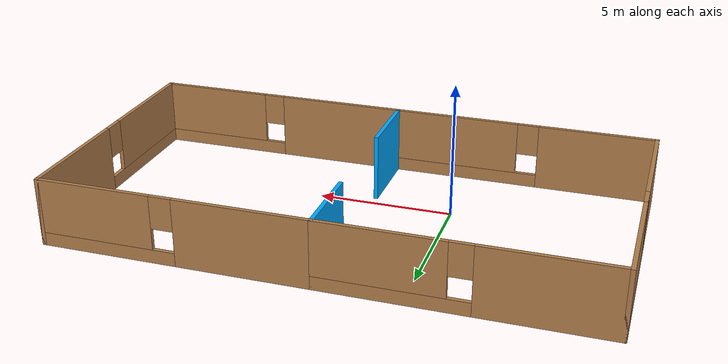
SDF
<?xml version='1.0'?>
<sdf version='1.6'>
  <model name='building'>
    <pose frame=''>2.99 1.585 0 0 -0 0</pose>
    <link name='Wall_1'>
      <pose frame=''>-4.925 -4.925 0 0 -0 0</pose>
      <visual name='Wall_1_Visual_0'>
        <pose frame=''>-2.80081 0 1.25 0 -0 0</pose>
        <geometry>
          <box>
            <size>4.39839 0.15 2.5</size>
          </box>
        </geometry>
        <material>
          <script>
            <uri>file://media/materials/scripts/gazebo.material</uri>
            <name>Gazebo/Wood</name>
          </script>
          <ambient>1 1 1 1</ambient>
        </material>
        <meta>
          <layer>0</layer>
        </meta>
      </visual>
      <collision name='Wall_1_Collision_0'>
        <geometry>
          <box>
            <size>4.39839 0.15 2.5</size>
          </box>
        </geometry>
        <pose frame=''>-2.80081 0 1.25 0 -0 0</pose>
      </collision>
      <visual name='Wall_1_Visual_1'>
        <pose frame=''>2.19919 0 0.25 0 -0 0</pose>
        <geometry>
          <box>
            <size>5.60161 0.15 0.5</size>
          </box>
        </geometry>
        <material>
          <script>
            <uri>file://media/materials/scripts/gazebo.material</uri>
            <name>Gazebo/Wood</name>
          </script>
          <ambient>1 1 1 1</ambient>
        </material>
        <meta>
          <layer>0</layer>
        </meta>
      </visual>
      <collision name='Wall_1_Collision_1'>
        <geometry>
          <box>
            <size>5.60161 0.15 0.5</size>
          </box>
        </geometry>
        <pose frame=''>2.19919 0 0.25 0 -0 0</pose>
      </collision>
      <visual name='Wall_1_Visual_2'>
        <pose frame=''>2.59919 0 1.5 0 -0 0</pose>
        <geometry>
          <box>
            <size>4.80161 0.15 2</size>
          </box>
        </geometry>
        <material>
          <script>
            <uri>file://media/materials/scripts/gazebo.material</uri>
            <name>Gazebo/Wood</name>
          </script>
          <ambient>1 1 1 1</ambient>
        </material>
        <meta>
          <layer>0</layer>
        </meta>
      </visual>
      <collision name='Wall_1_Collision_2'>
        <geometry>
          <box>
            <size>4.80161 0.15 2</size>
          </box>
        </geometry>
        <pose frame=''>2.59919 0 1.5 0 -0 0</pose>
      </collision>
      <visual name='Wall_1_Visual_3'>
        <pose frame=''>-0.201613 0 1.9 0 -0 0</pose>
        <geometry>
          <box>
            <size>0.8 0.15 1.2</size>
          </box>
        </geometry>
        <material>
          <script>
            <uri>file://media/materials/scripts/gazebo.material</uri>
            <name>Gazebo/Wood</name>
          </script>
          <ambient>1 1 1 1</ambient>
        </material>
        <meta>
          <layer>0</layer>
        </meta>
      </visual>
      <collision name='Wall_1_Collision_3'>
        <geometry>
          <box>
            <size>0.8 0.15 1.2</size>
          </box>
        </geometry>
        <pose frame=''>-0.201613 0 1.9 0 -0 0</pose>
      </collision>
    </link>
    <link name='Wall_11'>
      <pose frame=''>4.925 4.925 0 0 -0 0</pose>
      <visual name='Wall_11_Visual_0'>
        <pose frame=''>-2.54076 0 1.25 0 -0 0</pose>
        <geometry>
          <box>
            <size>4.91847 0.15 2.5</size>
          </box>
        </geometry>
        <material>
          <script>
            <uri>file://media/materials/scripts/gazebo.material</uri>
            <name>Gazebo/Wood</name>
          </script>
          <ambient>1 1 1 1</ambient>
        </material>
        <meta>
          <layer>0</layer>
        </meta>
      </visual>
      <collision name='Wall_11_Collision_0'>
        <geometry>
          <box>
            <size>4.91847 0.15 2.5</size>
          </box>
        </geometry>
        <pose frame=''>-2.54076 0 1.25 0 -0 0</pose>
      </collision>
      <visual name='Wall_11_Visual_1'>
        <pose frame=''>2.45924 0 0.25 0 -0 0</pose>
        <geometry>
          <box>
            <size>5.08153 0.15 0.5</size>
          </box>
        </geometry>
        <material>
          <script>
            <uri>file://media/materials/scripts/gazebo.material</uri>
            <name>Gazebo/Wood</name>
          </script>
          <ambient>1 1 1 1</ambient>
        </material>
        <meta>
          <layer>0</layer>
        </meta>
      </visual>
      <collision name='Wall_11_Collision_1'>
        <geometry>
          <box>
            <size>5.08153 0.15 0.5</size>
          </box>
        </geometry>
        <pose frame=''>2.45924 0 0.25 0 -0 0</pose>
      </collision>
      <visual name='Wall_11_Visual_2'>
        <pose frame=''>2.85924 0 1.5 0 -0 0</pose>
        <geometry>
          <box>
            <size>4.28153 0.15 2</size>
          </box>
        </geometry>
        <material>
          <script>
            <uri>file://media/materials/scripts/gazebo.material</uri>
            <name>Gazebo/Wood</name>
          </script>
          <ambient>1 1 1 1</ambient>
        </material>
        <meta>
          <layer>0</layer>
        </meta>
      </visual>
      <collision name='Wall_11_Collision_2'>
        <geometry>
          <box>
            <size>4.28153 0.15 2</size>
          </box>
        </geometry>
        <pose frame=''>2.85924 0 1.5 0 -0 0</pose>
      </collision>
      <visual name='Wall_11_Visual_3'>
        <pose frame=''>0.318475 0 1.9 0 -0 0</pose>
        <geometry>
          <box>
            <size>0.8 0.15 1.2</size>
          </box>
        </geometry>
        <material>
          <script>
            <uri>file://media/materials/scripts/gazebo.material</uri>
            <name>Gazebo/Wood</name>
          </script>
          <ambient>1 1 1 1</ambient>
        </material>
        <meta>
          <layer>0</layer>
        </meta>
      </visual>
      <collision name='Wall_11_Collision_3'>
        <geometry>
          <box>
            <size>0.8 0.15 1.2</size>
          </box>
        </geometry>
        <pose frame=''>0.318475 0 1.9 0 -0 0</pose>
      </collision>
    </link>
    <link name='Wall_12'>
      <pose frame=''>9.85 0 0 0 0 -1.5708</pose>
      <visual name='Wall_12_Visual_0'>
        <pose frame=''>-2.63217 0 1.25 0 -0 0</pose>
        <geometry>
          <box>
            <size>4.73566 0.15 2.5</size>
          </box>
        </geometry>
        <material>
          <script>
            <uri>file://media/materials/scripts/gazebo.material</uri>
            <name>Gazebo/Wood</name>
          </script>
          <ambient>1 1 1 1</ambient>
        </material>
        <meta>
          <layer>0</layer>
        </meta>
      </visual>
      <collision name='Wall_12_Collision_0'>
        <geometry>
          <box>
            <size>4.73566 0.15 2.5</size>
          </box>
        </geometry>
        <pose frame=''>-2.63217 0 1.25 0 -0 0</pose>
      </collision>
      <visual name='Wall_12_Visual_1'>
        <pose frame=''>2.36783 0 0.25 0 -0 0</pose>
        <geometry>
          <box>
            <size>5.26434 0.15 0.5</size>
          </box>
        </geometry>
        <material>
          <script>
            <uri>file://media/materials/scripts/gazebo.material</uri>
            <name>Gazebo/Wood</name>
          </script>
          <ambient>1 1 1 1</ambient>
        </material>
        <meta>
          <layer>0</layer>
        </meta>
      </visual>
      <collision name='Wall_12_Collision_1'>
        <geometry>
          <box>
            <size>5.26434 0.15 0.5</size>
          </box>
        </geometry>
        <pose frame=''>2.36783 0 0.25 0 -0 0</pose>
      </collision>
      <visual name='Wall_12_Visual_2'>
        <pose frame=''>2.76783 0 1.5 0 -0 0</pose>
        <geometry>
          <box>
            <size>4.46434 0.15 2</size>
          </box>
        </geometry>
        <material>
          <script>
            <uri>file://media/materials/scripts/gazebo.material</uri>
            <name>Gazebo/Wood</name>
          </script>
          <ambient>1 1 1 1</ambient>
        </material>
        <meta>
          <layer>0</layer>
        </meta>
      </visual>
      <collision name='Wall_12_Collision_2'>
        <geometry>
          <box>
            <size>4.46434 0.15 2</size>
          </box>
        </geometry>
        <pose frame=''>2.76783 0 1.5 0 -0 0</pose>
      </collision>
      <visual name='Wall_12_Visual_3'>
        <pose frame=''>0.135659 0 1.9 0 -0 0</pose>
        <geometry>
          <box>
            <size>0.8 0.15 1.2</size>
          </box>
        </geometry>
        <material>
          <script>
            <uri>file://media/materials/scripts/gazebo.material</uri>
            <name>Gazebo/Wood</name>
          </script>
          <ambient>1 1 1 1</ambient>
        </material>
        <meta>
          <layer>0</layer>
        </meta>
      </visual>
      <collision name='Wall_12_Collision_3'>
        <geometry>
          <box>
            <size>0.8 0.15 1.2</size>
          </box>
        </geometry>
        <pose frame=''>0.135659 0 1.9 0 -0 0</pose>
      </collision>
    </link>
    <link name='Wall_2'>
      <collision name='Wall_2_Collision'>
        <geometry>
          <box>
            <size>3 0.15 2.5</size>
          </box>
        </geometry>
        <pose frame=''>0 0 1.25 0 -0 0</pose>
      </collision>
      <visual name='Wall_2_Visual'>
        <pose frame=''>0 0 1.25 0 -0 0</pose>
        <geometry>
          <box>
            <size>3 0.15 2.5</size>
          </box>
        </geometry>
        <material>
          <script>
            <uri>file://media/materials/scripts/gazebo.material</uri>
            <name>Gazebo/Grey</name>
          </script>
          <ambient>0 0.666667 1 1</ambient>
        </material>
        <meta>
          <layer>0</layer>
        </meta>
      </visual>
      <pose frame=''>0 -3.5 0 0 -0 1.5708</pose>
    </link>
    <link name='Wall_4'>
      <pose frame=''>4.925 -4.925 0 0 -0 0</pose>
      <visual name='Wall_4_Visual_0'>
        <pose frame=''>-2.57135 0 1.25 0 -0 0</pose>
        <geometry>
          <box>
            <size>4.85729 0.15 2.5</size>
          </box>
        </geometry>
        <material>
          <script>
            <uri>file://media/materials/scripts/gazebo.material</uri>
            <name>Gazebo/Wood</name>
          </script>
          <ambient>1 1 1 1</ambient>
        </material>
        <meta>
          <layer>0</layer>
        </meta>
      </visual>
      <collision name='Wall_4_Collision_0'>
        <geometry>
          <box>
            <size>4.85729 0.15 2.5</size>
          </box>
        </geometry>
        <pose frame=''>-2.57135 0 1.25 0 -0 0</pose>
      </collision>
      <visual name='Wall_4_Visual_1'>
        <pose frame=''>2.42865 0 0.25 0 -0 0</pose>
        <geometry>
          <box>
            <size>5.14271 0.15 0.5</size>
          </box>
        </geometry>
        <material>
          <script>
            <uri>file://media/materials/scripts/gazebo.material</uri>
            <name>Gazebo/Wood</name>
          </script>
          <ambient>1 1 1 1</ambient>
        </material>
        <meta>
          <layer>0</layer>
        </meta>
      </visual>
      <collision name='Wall_4_Collision_1'>
        <geometry>
          <box>
            <size>5.14271 0.15 0.5</size>
          </box>
        </geometry>
        <pose frame=''>2.42865 0 0.25 0 -0 0</pose>
      </collision>
      <visual name='Wall_4_Visual_2'>
        <pose frame=''>2.82865 0 1.5 0 -0 0</pose>
        <geometry>
          <box>
            <size>4.3427 0.15 2</size>
          </box>
        </geometry>
        <material>
          <script>
            <uri>file://media/materials/scripts/gazebo.material</uri>
            <name>Gazebo/Wood</name>
          </script>
          <ambient>1 1 1 1</ambient>
        </material>
        <meta>
          <layer>0</layer>
        </meta>
      </visual>
      <collision name='Wall_4_Collision_2'>
        <geometry>
          <box>
            <size>4.3427 0.15 2</size>
          </box>
        </geometry>
        <pose frame=''>2.82865 0 1.5 0 -0 0</pose>
      </collision>
      <visual name='Wall_4_Visual_3'>
        <pose frame=''>0.257295 0 1.9 0 -0 0</pose>
        <geometry>
          <box>
            <size>0.8 0.15 1.2</size>
          </box>
        </geometry>
        <material>
          <script>
            <uri>file://media/materials/scripts/gazebo.material</uri>
            <name>Gazebo/Wood</name>
          </script>
          <ambient>1 1 1 1</ambient>
        </material>
        <meta>
          <layer>0</layer>
        </meta>
      </visual>
      <collision name='Wall_4_Collision_3'>
        <geometry>
          <box>
            <size>0.8 0.15 1.2</size>
          </box>
        </geometry>
        <pose frame=''>0.257295 0 1.9 0 -0 0</pose>
      </collision>
    </link>
    <link name='Wall_7'>
      <pose frame=''>-9.85 0 0 0 -0 1.5708</pose>
      <visual name='Wall_7_Visual_0'>
        <pose frame=''>-2.70665 0 1.25 0 -0 0</pose>
        <geometry>
          <box>
            <size>4.5867 0.15 2.5</size>
          </box>
        </geometry>
        <material>
          <script>
            <uri>file://media/materials/scripts/gazebo.material</uri>
            <name>Gazebo/Wood</name>
          </script>
          <ambient>1 1 1 1</ambient>
        </material>
        <meta>
          <layer>0</layer>
        </meta>
      </visual>
      <collision name='Wall_7_Collision_0'>
        <geometry>
          <box>
            <size>4.5867 0.15 2.5</size>
          </box>
        </geometry>
        <pose frame=''>-2.70665 0 1.25 0 -0 0</pose>
      </collision>
      <visual name='Wall_7_Visual_1'>
        <pose frame=''>2.29335 0 0.25 0 -0 0</pose>
        <geometry>
          <box>
            <size>5.4133 0.15 0.5</size>
          </box>
        </geometry>
        <material>
          <script>
            <uri>file://media/materials/scripts/gazebo.material</uri>
            <name>Gazebo/Wood</name>
          </script>
          <ambient>1 1 1 1</ambient>
        </material>
        <meta>
          <layer>0</layer>
        </meta>
      </visual>
      <collision name='Wall_7_Collision_1'>
        <geometry>
          <box>
            <size>5.4133 0.15 0.5</size>
          </box>
        </geometry>
        <pose frame=''>2.29335 0 0.25 0 -0 0</pose>
      </collision>
      <visual name='Wall_7_Visual_2'>
        <pose frame=''>2.69335 0 1.5 0 -0 0</pose>
        <geometry>
          <box>
            <size>4.6133 0.15 2</size>
          </box>
        </geometry>
        <material>
          <script>
            <uri>file://media/materials/scripts/gazebo.material</uri>
            <name>Gazebo/Wood</name>
          </script>
          <ambient>1 1 1 1</ambient>
        </material>
        <meta>
          <layer>0</layer>
        </meta>
      </visual>
      <collision name='Wall_7_Collision_2'>
        <geometry>
          <box>
            <size>4.6133 0.15 2</size>
          </box>
        </geometry>
        <pose frame=''>2.69335 0 1.5 0 -0 0</pose>
      </collision>
      <visual name='Wall_7_Visual_3'>
        <pose frame=''>-0.013298 0 1.9 0 -0 0</pose>
        <geometry>
          <box>
            <size>0.8 0.15 1.2</size>
          </box>
        </geometry>
        <material>
          <script>
            <uri>file://media/materials/scripts/gazebo.material</uri>
            <name>Gazebo/Wood</name>
          </script>
          <ambient>1 1 1 1</ambient>
        </material>
        <meta>
          <layer>0</layer>
        </meta>
      </visual>
      <collision name='Wall_7_Collision_3'>
        <geometry>
          <box>
            <size>0.8 0.15 1.2</size>
          </box>
        </geometry>
        <pose frame=''>-0.013298 0 1.9 0 -0 0</pose>
      </collision>
    </link>
    <link name='Wall_8'>
      <pose frame=''>-4.925 4.925 0 0 -0 0</pose>
      <visual name='Wall_8_Visual_0'>
        <pose frame=''>-2.64785 0 1.25 0 -0 0</pose>
        <geometry>
          <box>
            <size>4.70429 0.15 2.5</size>
          </box>
        </geometry>
        <material>
          <script>
            <uri>file://media/materials/scripts/gazebo.material</uri>
            <name>Gazebo/Wood</name>
          </script>
          <ambient>1 1 1 1</ambient>
        </material>
        <meta>
          <layer>0</layer>
        </meta>
      </visual>
      <collision name='Wall_8_Collision_0'>
        <geometry>
          <box>
            <size>4.70429 0.15 2.5</size>
          </box>
        </geometry>
        <pose frame=''>-2.64785 0 1.25 0 -0 0</pose>
      </collision>
      <visual name='Wall_8_Visual_1'>
        <pose frame=''>2.35215 0 0.25 0 -0 0</pose>
        <geometry>
          <box>
            <size>5.29571 0.15 0.5</size>
          </box>
        </geometry>
        <material>
          <script>
            <uri>file://media/materials/scripts/gazebo.material</uri>
            <name>Gazebo/Wood</name>
          </script>
          <ambient>1 1 1 1</ambient>
        </material>
        <meta>
          <layer>0</layer>
        </meta>
      </visual>
      <collision name='Wall_8_Collision_1'>
        <geometry>
          <box>
            <size>5.29571 0.15 0.5</size>
          </box>
        </geometry>
        <pose frame=''>2.35215 0 0.25 0 -0 0</pose>
      </collision>
      <visual name='Wall_8_Visual_2'>
        <pose frame=''>2.75215 0 1.5 0 -0 0</pose>
        <geometry>
          <box>
            <size>4.49571 0.15 2</size>
          </box>
        </geometry>
        <material>
          <script>
            <uri>file://media/materials/scripts/gazebo.material</uri>
            <name>Gazebo/Wood</name>
          </script>
          <ambient>1 1 1 1</ambient>
        </material>
        <meta>
          <layer>0</layer>
        </meta>
      </visual>
      <collision name='Wall_8_Collision_2'>
        <geometry>
          <box>
            <size>4.49571 0.15 2</size>
          </box>
        </geometry>
        <pose frame=''>2.75215 0 1.5 0 -0 0</pose>
      </collision>
      <visual name='Wall_8_Visual_3'>
        <pose frame=''>0.10429 0 1.9 0 -0 0</pose>
        <geometry>
          <box>
            <size>0.8 0.15 1.2</size>
          </box>
        </geometry>
        <material>
          <script>
            <uri>file://media/materials/scripts/gazebo.material</uri>
            <name>Gazebo/Wood</name>
          </script>
          <ambient>1 1 1 1</ambient>
        </material>
        <meta>
          <layer>0</layer>
        </meta>
      </visual>
      <collision name='Wall_8_Collision_3'>
        <geometry>
          <box>
            <size>0.8 0.15 1.2</size>
          </box>
        </geometry>
        <pose frame=''>0.10429 0 1.9 0 -0 0</pose>
      </collision>
    </link>
    <link name='Wall_9'>
      <collision name='Wall_9_Collision'>
        <geometry>
          <box>
            <size>3 0.15 2.5</size>
          </box>
        </geometry>
        <pose frame=''>0 0 1.25 0 -0 0</pose>
      </collision>
      <visual name='Wall_9_Visual'>
        <pose frame=''>0 0 1.25 0 -0 0</pose>
        <geometry>
          <box>
            <size>3 0.15 2.5</size>
          </box>
        </geometry>
        <material>
          <script>
            <uri>file://media/materials/scripts/gazebo.material</uri>
            <name>Gazebo/Grey</name>
          </script>
          <ambient>0 0.666667 1 1</ambient>
        </material>
        <meta>
          <layer>0</layer>
        </meta>
      </visual>
      <pose frame=''>0 3.5 0 0 0 -1.5708</pose>
    </link>
    <static>1</static>
  </model>
</sdf>
